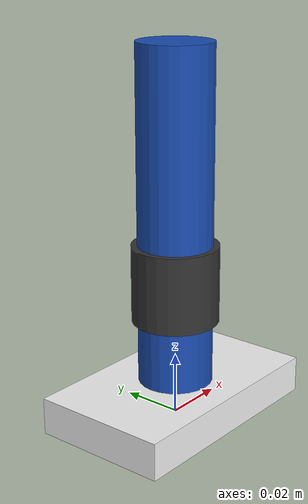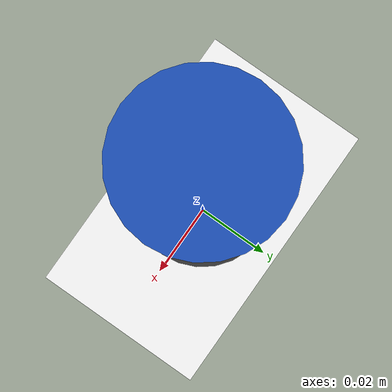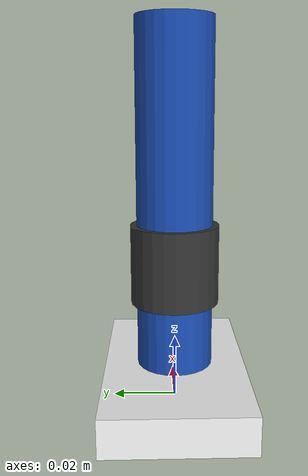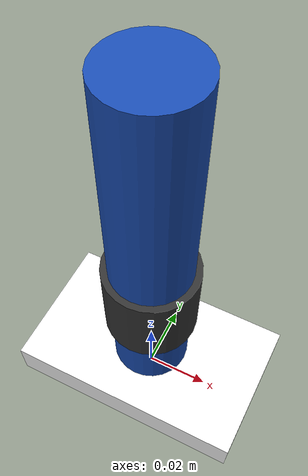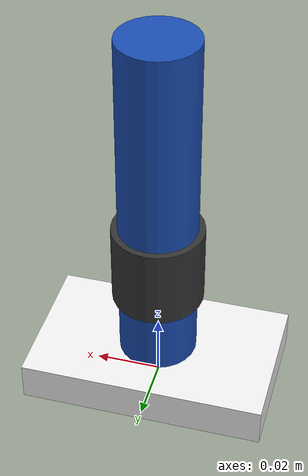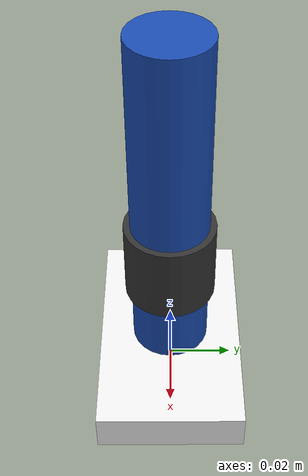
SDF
<?xml version="1.0"?>
<sdf version="1.7">
  <model name="mirror_brush">
    <static>false</static>
    <self_collide>false</self_collide>

    <!-- Main brush body -->
    <link name="mirror_brush_body">
      <pose>0 0 0 0 0 0</pose>

      <inertial>
        <mass>0.12</mass>
        <pose>0 0 0.05 0 0 0</pose>
        <inertia>
          <ixx>0.0006</ixx>
          <ixy>0</ixy>
          <ixz>0</ixz>
          <iyy>0.0012</iyy>
          <iyz>0</iyz>
          <izz>0.0006</izz>
        </inertia>
      </inertial>

      <!-- Ergonomic Handle (blue plastic) -->
      <visual name="handle_visual">
        <pose>0 0 0.065 0 0 0</pose>
        <geometry>
          <cylinder>
            <radius>0.012</radius>
            <length>0.11</length>
          </cylinder>
        </geometry>
        <material>
          <ambient>0.1 0.3 0.7 1</ambient>
          <diffuse>0.1 0.3 0.7 1</diffuse>
          <specular>0.3 0.3 0.3 1</specular>
        </material>
      </visual>

      <collision name="handle_collision">
        <pose>0 0 0.065 0 0 0</pose>
        <geometry>
          <cylinder>
            <radius>0.012</radius>
            <length>0.11</length>
          </cylinder>
        </geometry>
      </collision>

      <!-- Handle grip (textured rubber section) -->
      <visual name="grip_visual">
        <pose>0 0 0.045 0 0 0</pose>
        <geometry>
          <cylinder>
            <radius>0.014</radius>
            <length>0.025</length>
          </cylinder>
        </geometry>
        <material>
          <ambient>0.2 0.2 0.2 1</ambient>
          <diffuse>0.2 0.2 0.2 1</diffuse>
          <specular>0.05 0.05 0.05 1</specular>
        </material>
      </visual>

      <!-- Mirror brush head (rectangular, flat, white plastic) -->
      <visual name="head_visual">
        <pose>0 0 0.006 0 0 0</pose>
        <geometry>
          <box>
            <size>0.075 0.045 0.012</size>
          </box>
        </geometry>
        <material>
          <ambient>0.95 0.95 0.95 1</ambient>
          <diffuse>0.95 0.95 0.95 1</diffuse>
          <specular>0.2 0.2 0.2 1</specular>
        </material>
      </visual>

      <collision name="head_collision">
        <pose>0 0 0.006 0 0 0</pose>
        <geometry>
          <box>
            <size>0.075 0.045 0.012</size>
          </box>
        </geometry>
      </collision>

      <!-- Soft microfiber bristles (light blue, very fine) -->
      <!-- Row 1 -->
      <visual name="bristles_1_1">
        <pose>-0.025 -0.015 -0.002 0 0 0</pose>
        <geometry>
          <cylinder>
            <radius>0.0002</radius>
            <length>0.006</length>
          </cylinder>
        </geometry>
        <material>
          <ambient>0.85 0.9 1.0 1</ambient>
          <diffuse>0.85 0.9 1.0 1</diffuse>
          <specular>0.05 0.05 0.05 1</specular>
        </material>
      </visual>

      <visual name="bristles_1_2">
        <pose>-0.025 -0.007 -0.002 0 0 0</pose>
        <geometry>
          <cylinder>
            <radius>0.0002</radius>
            <length>0.006</length>
          </cylinder>
        </geometry>
        <material>
          <ambient>0.85 0.9 1.0 1</ambient>
          <diffuse>0.85 0.9 1.0 1</diffuse>
          <specular>0.05 0.05 0.05 1</specular>
        </material>
      </visual>

      <visual name="bristles_1_3">
        <pose>-0.025 0 -0.002 0 0 0</pose>
        <geometry>
          <cylinder>
            <radius>0.0002</radius>
            <length>0.006</length>
          </cylinder>
        </geometry>
        <material>
          <ambient>0.85 0.9 1.0 1</ambient>
          <diffuse>0.85 0.9 1.0 1</diffuse>
          <specular>0.05 0.05 0.05 1</specular>
        </material>
      </visual>

      <visual name="bristles_1_4">
        <pose>-0.025 0.007 -0.002 0 0 0</pose>
        <geometry>
          <cylinder>
            <radius>0.0002</radius>
            <length>0.006</length>
          </cylinder>
        </geometry>
        <material>
          <ambient>0.85 0.9 1.0 1</ambient>
          <diffuse>0.85 0.9 1.0 1</diffuse>
          <specular>0.05 0.05 0.05 1</specular>
        </material>
      </visual>

      <visual name="bristles_1_5">
        <pose>-0.025 0.015 -0.002 0 0 0</pose>
        <geometry>
          <cylinder>
            <radius>0.0002</radius>
            <length>0.006</length>
          </cylinder>
        </geometry>
        <material>
          <ambient>0.85 0.9 1.0 1</ambient>
          <diffuse>0.85 0.9 1.0 1</diffuse>
          <specular>0.05 0.05 0.05 1</specular>
        </material>
      </visual>

      <!-- Row 2 -->
      <visual name="bristles_2_1">
        <pose>-0.012 -0.015 -0.002 0 0 0</pose>
        <geometry>
          <cylinder>
            <radius>0.0002</radius>
            <length>0.006</length>
          </cylinder>
        </geometry>
        <material>
          <ambient>0.85 0.9 1.0 1</ambient>
          <diffuse>0.85 0.9 1.0 1</diffuse>
          <specular>0.05 0.05 0.05 1</specular>
        </material>
      </visual>

      <visual name="bristles_2_2">
        <pose>-0.012 -0.007 -0.002 0 0 0</pose>
        <geometry>
          <cylinder>
            <radius>0.0002</radius>
            <length>0.006</length>
          </cylinder>
        </geometry>
        <material>
          <ambient>0.85 0.9 1.0 1</ambient>
          <diffuse>0.85 0.9 1.0 1</diffuse>
          <specular>0.05 0.05 0.05 1</specular>
        </material>
      </visual>

      <visual name="bristles_2_3">
        <pose>-0.012 0 -0.002 0 0 0</pose>
        <geometry>
          <cylinder>
            <radius>0.0002</radius>
            <length>0.006</length>
          </cylinder>
        </geometry>
        <material>
          <ambient>0.85 0.9 1.0 1</ambient>
          <diffuse>0.85 0.9 1.0 1</diffuse>
          <specular>0.05 0.05 0.05 1</specular>
        </material>
      </visual>

      <visual name="bristles_2_4">
        <pose>-0.012 0.007 -0.002 0 0 0</pose>
        <geometry>
          <cylinder>
            <radius>0.0002</radius>
            <length>0.006</length>
          </cylinder>
        </geometry>
        <material>
          <ambient>0.85 0.9 1.0 1</ambient>
          <diffuse>0.85 0.9 1.0 1</diffuse>
          <specular>0.05 0.05 0.05 1</specular>
        </material>
      </visual>

      <visual name="bristles_2_5">
        <pose>-0.012 0.015 -0.002 0 0 0</pose>
        <geometry>
          <cylinder>
            <radius>0.0002</radius>
            <length>0.006</length>
          </cylinder>
        </geometry>
        <material>
          <ambient>0.85 0.9 1.0 1</ambient>
          <diffuse>0.85 0.9 1.0 1</diffuse>
          <specular>0.05 0.05 0.05 1</specular>
        </material>
      </visual>

      <!-- Row 3 (center) -->
      <visual name="bristles_3_1">
        <pose>0 -0.015 -0.002 0 0 0</pose>
        <geometry>
          <cylinder>
            <radius>0.0002</radius>
            <length>0.006</length>
          </cylinder>
        </geometry>
        <material>
          <ambient>0.85 0.9 1.0 1</ambient>
          <diffuse>0.85 0.9 1.0 1</diffuse>
          <specular>0.05 0.05 0.05 1</specular>
        </material>
      </visual>

      <visual name="bristles_3_2">
        <pose>0 -0.007 -0.002 0 0 0</pose>
        <geometry>
          <cylinder>
            <radius>0.0002</radius>
            <length>0.006</length>
          </cylinder>
        </geometry>
        <material>
          <ambient>0.85 0.9 1.0 1</ambient>
          <diffuse>0.85 0.9 1.0 1</diffuse>
          <specular>0.05 0.05 0.05 1</specular>
        </material>
      </visual>

      <visual name="bristles_3_3">
        <pose>0 0 -0.002 0 0 0</pose>
        <geometry>
          <cylinder>
            <radius>0.0002</radius>
            <length>0.006</length>
          </cylinder>
        </geometry>
        <material>
          <ambient>0.85 0.9 1.0 1</ambient>
          <diffuse>0.85 0.9 1.0 1</diffuse>
          <specular>0.05 0.05 0.05 1</specular>
        </material>
      </visual>

      <visual name="bristles_3_4">
        <pose>0 0.007 -0.002 0 0 0</pose>
        <geometry>
          <cylinder>
            <radius>0.0002</radius>
            <length>0.006</length>
          </cylinder>
        </geometry>
        <material>
          <ambient>0.85 0.9 1.0 1</ambient>
          <diffuse>0.85 0.9 1.0 1</diffuse>
          <specular>0.05 0.05 0.05 1</specular>
        </material>
      </visual>

      <visual name="bristles_3_5">
        <pose>0 0.015 -0.002 0 0 0</pose>
        <geometry>
          <cylinder>
            <radius>0.0002</radius>
            <length>0.006</length>
          </cylinder>
        </geometry>
        <material>
          <ambient>0.85 0.9 1.0 1</ambient>
          <diffuse>0.85 0.9 1.0 1</diffuse>
          <specular>0.05 0.05 0.05 1</specular>
        </material>
      </visual>

      <!-- Row 4 -->
      <visual name="bristles_4_1">
        <pose>0.012 -0.015 -0.002 0 0 0</pose>
        <geometry>
          <cylinder>
            <radius>0.0002</radius>
            <length>0.006</length>
          </cylinder>
        </geometry>
        <material>
          <ambient>0.85 0.9 1.0 1</ambient>
          <diffuse>0.85 0.9 1.0 1</diffuse>
          <specular>0.05 0.05 0.05 1</specular>
        </material>
      </visual>

      <visual name="bristles_4_2">
        <pose>0.012 -0.007 -0.002 0 0 0</pose>
        <geometry>
          <cylinder>
            <radius>0.0002</radius>
            <length>0.006</length>
          </cylinder>
        </geometry>
        <material>
          <ambient>0.85 0.9 1.0 1</ambient>
          <diffuse>0.85 0.9 1.0 1</diffuse>
          <specular>0.05 0.05 0.05 1</specular>
        </material>
      </visual>

      <visual name="bristles_4_3">
        <pose>0.012 0 -0.002 0 0 0</pose>
        <geometry>
          <cylinder>
            <radius>0.0002</radius>
            <length>0.006</length>
          </cylinder>
        </geometry>
        <material>
          <ambient>0.85 0.9 1.0 1</ambient>
          <diffuse>0.85 0.9 1.0 1</diffuse>
          <specular>0.05 0.05 0.05 1</specular>
        </material>
      </visual>

      <visual name="bristles_4_4">
        <pose>0.012 0.007 -0.002 0 0 0</pose>
        <geometry>
          <cylinder>
            <radius>0.0002</radius>
            <length>0.006</length>
          </cylinder>
        </geometry>
        <material>
          <ambient>0.85 0.9 1.0 1</ambient>
          <diffuse>0.85 0.9 1.0 1</diffuse>
          <specular>0.05 0.05 0.05 1</specular>
        </material>
      </visual>

      <visual name="bristles_4_5">
        <pose>0.012 0.015 -0.002 0 0 0</pose>
        <geometry>
          <cylinder>
            <radius>0.0002</radius>
            <length>0.006</length>
          </cylinder>
        </geometry>
        <material>
          <ambient>0.85 0.9 1.0 1</ambient>
          <diffuse>0.85 0.9 1.0 1</diffuse>
          <specular>0.05 0.05 0.05 1</specular>
        </material>
      </visual>

      <!-- Row 5 -->
      <visual name="bristles_5_1">
        <pose>0.025 -0.015 -0.002 0 0 0</pose>
        <geometry>
          <cylinder>
            <radius>0.0002</radius>
            <length>0.006</length>
          </cylinder>
        </geometry>
        <material>
          <ambient>0.85 0.9 1.0 1</ambient>
          <diffuse>0.85 0.9 1.0 1</diffuse>
          <specular>0.05 0.05 0.05 1</specular>
        </material>
      </visual>

      <visual name="bristles_5_2">
        <pose>0.025 -0.007 -0.002 0 0 0</pose>
        <geometry>
          <cylinder>
            <radius>0.0002</radius>
            <length>0.006</length>
          </cylinder>
        </geometry>
        <material>
          <ambient>0.85 0.9 1.0 1</ambient>
          <diffuse>0.85 0.9 1.0 1</diffuse>
          <specular>0.05 0.05 0.05 1</specular>
        </material>
      </visual>

      <visual name="bristles_5_3">
        <pose>0.025 0 -0.002 0 0 0</pose>
        <geometry>
          <cylinder>
            <radius>0.0002</radius>
            <length>0.006</length>
          </cylinder>
        </geometry>
        <material>
          <ambient>0.85 0.9 1.0 1</ambient>
          <diffuse>0.85 0.9 1.0 1</diffuse>
          <specular>0.05 0.05 0.05 1</specular>
        </material>
      </visual>

      <visual name="bristles_5_4">
        <pose>0.025 0.007 -0.002 0 0 0</pose>
        <geometry>
          <cylinder>
            <radius>0.0002</radius>
            <length>0.006</length>
          </cylinder>
        </geometry>
        <material>
          <ambient>0.85 0.9 1.0 1</ambient>
          <diffuse>0.85 0.9 1.0 1</diffuse>
          <specular>0.05 0.05 0.05 1</specular>
        </material>
      </visual>

      <visual name="bristles_5_5">
        <pose>0.025 0.015 -0.002 0 0 0</pose>
        <geometry>
          <cylinder>
            <radius>0.0002</radius>
            <length>0.006</length>
          </cylinder>
        </geometry>
        <material>
          <ambient>0.85 0.9 1.0 1</ambient>
          <diffuse>0.85 0.9 1.0 1</diffuse>
          <specular>0.05 0.05 0.05 1</specular>
        </material>
      </visual>

      <!-- Simplified collision for bristles (soft contact) -->
      <collision name="bristles_collision">
        <pose>0 0 -0.002 0 0 0</pose>
        <geometry>
          <box>
            <size>0.065 0.04 0.006</size>
          </box>
        </geometry>
        <surface>
          <friction>
            <ode>
              <mu>0.7</mu>
              <mu2>0.7</mu2>
            </ode>
          </friction>
          <bounce>
            <restitution_coefficient>0.05</restitution_coefficient>
          </bounce>
          <contact>
            <ode>
              <soft_cfm>0.1</soft_cfm>
              <soft_erp>0.2</soft_erp>
              <kp>1000</kp>
              <kd>10</kd>
            </ode>
          </contact>
        </surface>
      </collision>

    </link>

  </model>
</sdf>
